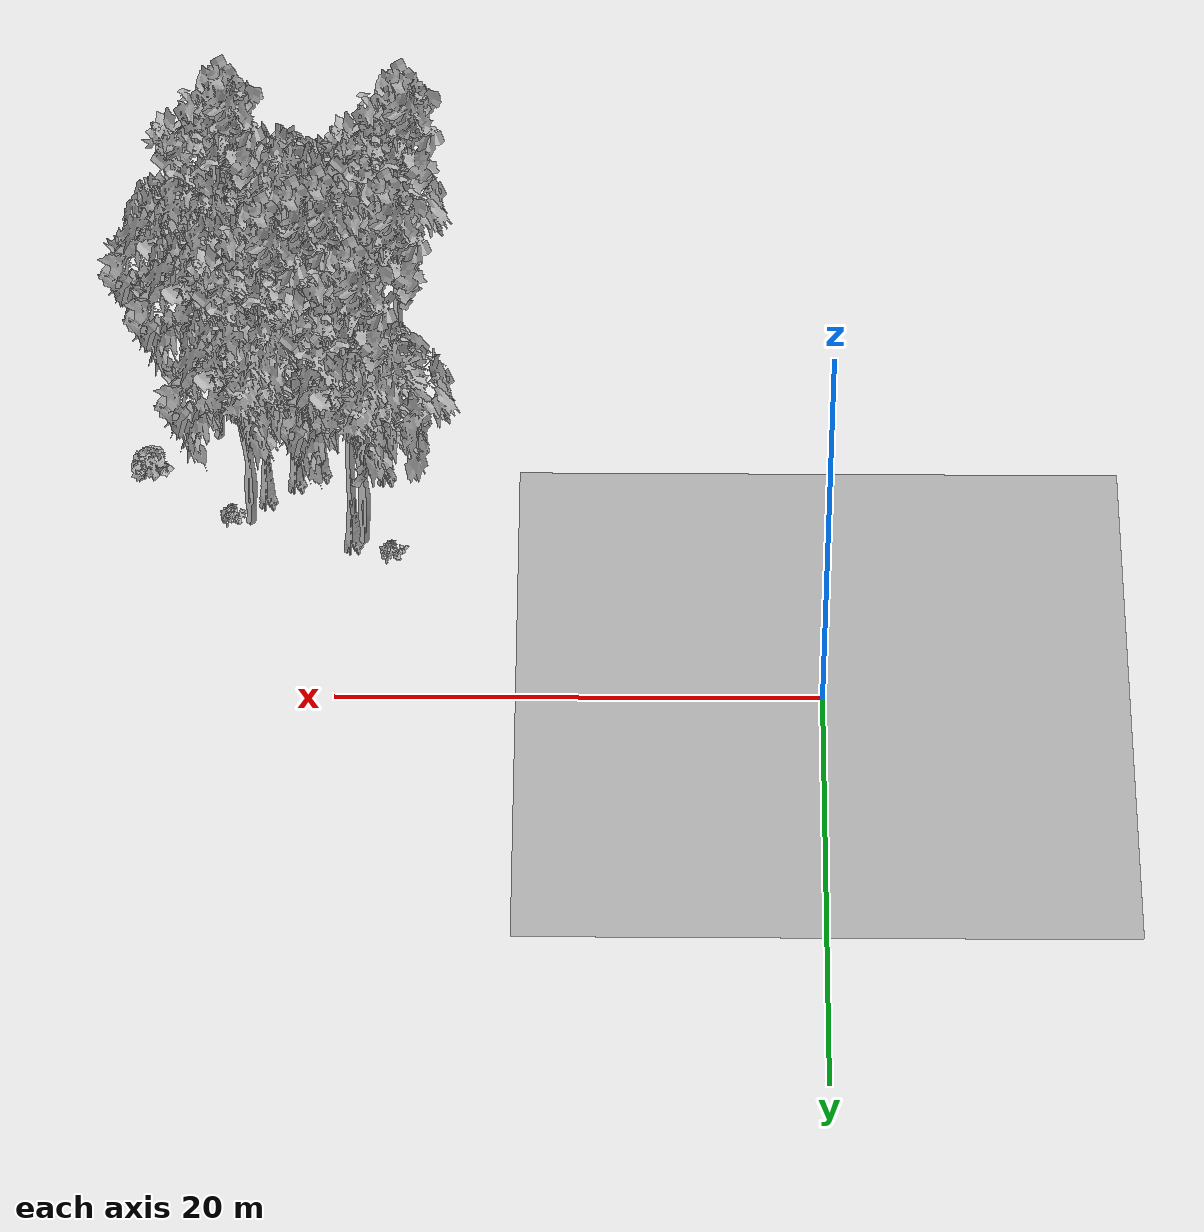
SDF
<sdf version="1.7">
 <world name="default">
  <model name="ground_plane">
   <static>1</static>
   <link name="link">
    <collision name="collision">
     <pose>-50 0 0 0 -0 0</pose>
     <geometry><plane><normal>0 0 1</normal><size>80 80</size></plane></geometry>
     <surface><contact><ode><min_depth>0.01</min_depth><max_vel>0</max_vel></ode></contact></surface>
    </collision>
    <visual name="grass">
     <cast_shadows>0</cast_shadows>
     <geometry>
      <mesh>
       <scale>0.46714285714285714 0.46714285714285714 0.1</scale>
       <uri>file://grass_plane/meshes/grass_plane.dae</uri>
      </mesh>
     </geometry>
    </visual>
   </link>
  </model>
  <model name="Tree 21">
   <static>1</static>
   <pose>19.55637076471522 -8.755730757932383 0 1.57079 -0 0</pose>
   <link name="link">
    <collision name="collision">
     <geometry><mesh><scale>3.5 5 3.5</scale><uri>model://tree_9/meshes/tree_9.obj</uri></mesh></geometry>
    </collision>
    <visual name="visual">
     <geometry><mesh><scale>3.5 5 3.5</scale><uri>model://tree_9/meshes/tree_9.obj</uri></mesh></geometry>
    </visual>
   </link>
  </model>
  <model name="Tree 63">
   <static>1</static>
   <pose>22.034921889106798 -12.19464837483941 0 1.57079 -0 0</pose>
   <link name="link">
    <collision name="collision">
     <geometry><mesh><scale>3.5 5 3.5</scale><uri>model://tree_9/meshes/tree_9.obj</uri></mesh></geometry>
    </collision>
    <visual name="visual">
     <geometry><mesh><scale>3.5 5 3.5</scale><uri>model://tree_9/meshes/tree_9.obj</uri></mesh></geometry>
    </visual>
   </link>
  </model>
  <model name="Tree 75">
   <static>1</static>
   <pose>23.75283128371443 -9.757232405916064 0 1.57079 -0 0</pose>
   <link name="link">
    <collision name="collision">
     <geometry><mesh><scale>3.5 5 3.5</scale><uri>model://tree_2/meshes/tree_2.obj</uri></mesh></geometry>
    </collision>
    <visual name="visual">
     <geometry><mesh><scale>3.5 5 3.5</scale><uri>model://tree_2/meshes/tree_2.obj</uri></mesh></geometry>
    </visual>
   </link>
  </model>
  <model name="Tree 132">
   <static>1</static>
   <pose>25.300776297335943 -19.22681442728088 0 1.57079 -0 0</pose>
   <link name="link">
    <collision name="collision">
     <geometry><mesh><scale>3.5 5 3.5</scale><uri>model://tree_9/meshes/tree_9.obj</uri></mesh></geometry>
    </collision>
    <visual name="visual">
     <geometry><mesh><scale>3.5 5 3.5</scale><uri>model://tree_9/meshes/tree_9.obj</uri></mesh></geometry>
    </visual>
   </link>
  </model>
  <model name="Tree 209">
   <static>1</static>
   <pose>19.543037786777653 -19.65341753990873 0 1.57079 -0 0</pose>
   <link name="link">
    <collision name="collision">
     <geometry><mesh><scale>3.5 5 3.5</scale><uri>model://tree_2/meshes/tree_2.obj</uri></mesh></geometry>
    </collision>
    <visual name="visual">
     <geometry><mesh><scale>3.5 5 3.5</scale><uri>model://tree_2/meshes/tree_2.obj</uri></mesh></geometry>
    </visual>
   </link>
  </model>
  <model name="Tree 220">
   <static>1</static>
   <pose>23.22256454277135 -11.236046316195775 0 1.57079 -0 0</pose>
   <link name="link">
    <collision name="collision">
     <geometry><mesh><scale>3.5 5 3.5</scale><uri>model://tree_9/meshes/tree_9.obj</uri></mesh></geometry>
    </collision>
    <visual name="visual">
     <geometry><mesh><scale>3.5 5 3.5</scale><uri>model://tree_9/meshes/tree_9.obj</uri></mesh></geometry>
    </visual>
   </link>
  </model>
  <model name="Tree 232">
   <static>1</static>
   <pose>26.50325574579297 -17.33328300746855 0 1.57079 -0 0</pose>
   <link name="link">
    <collision name="collision">
     <geometry><mesh><scale>3.5 5 3.5</scale><uri>model://tree_2/meshes/tree_2.obj</uri></mesh></geometry>
    </collision>
    <visual name="visual">
     <geometry><mesh><scale>3.5 5 3.5</scale><uri>model://tree_2/meshes/tree_2.obj</uri></mesh></geometry>
    </visual>
   </link>
  </model>
  <model name="Tree 260">
   <static>1</static>
   <pose>17.884509547198796 -19.051057427737945 0 1.57079 -0 0</pose>
   <link name="link">
    <collision name="collision">
     <geometry><mesh><scale>3.5 5 3.5</scale><uri>model://tree_9/meshes/tree_9.obj</uri></mesh></geometry>
    </collision>
    <visual name="visual">
     <geometry><mesh><scale>3.5 5 3.5</scale><uri>model://tree_9/meshes/tree_9.obj</uri></mesh></geometry>
    </visual>
   </link>
  </model>
  <model name="Tree 329">
   <static>1</static>
   <pose>21.011503853876583 -12.784759894155755 0 1.57079 -0 0</pose>
   <link name="link">
    <collision name="collision">
     <geometry><mesh><scale>3.5 5 3.5</scale><uri>model://tree_9/meshes/tree_9.obj</uri></mesh></geometry>
    </collision>
    <visual name="visual">
     <geometry><mesh><scale>3.5 5 3.5</scale><uri>model://tree_9/meshes/tree_9.obj</uri></mesh></geometry>
    </visual>
   </link>
  </model>
  <model name="Tree 361">
   <static>1</static>
   <pose>18.96966673957877 -8.698394521746167 0 1.57079 -0 0</pose>
   <link name="link">
    <collision name="collision">
     <geometry><mesh><scale>3.5 5 3.5</scale><uri>model://tree_2/meshes/tree_2.obj</uri></mesh></geometry>
    </collision>
    <visual name="visual">
     <geometry><mesh><scale>3.5 5 3.5</scale><uri>model://tree_2/meshes/tree_2.obj</uri></mesh></geometry>
    </visual>
   </link>
  </model>
  <model name="Tree 462">
   <static>1</static>
   <pose>23.67823998934859 -20.158223382603097 0 1.57079 -0 0</pose>
   <link name="link">
    <collision name="collision">
     <geometry><mesh><scale>3.5 5 3.5</scale><uri>model://tree_2/meshes/tree_2.obj</uri></mesh></geometry>
    </collision>
    <visual name="visual">
     <geometry><mesh><scale>3.5 5 3.5</scale><uri>model://tree_2/meshes/tree_2.obj</uri></mesh></geometry>
    </visual>
   </link>
  </model>
  <model name="Tree 549">
   <static>1</static>
   <pose>25.325007734996888 -14.695273766125545 0 1.57079 -0 0</pose>
   <link name="link">
    <collision name="collision">
     <geometry><mesh><scale>3.5 5 3.5</scale><uri>model://tree_2/meshes/tree_2.obj</uri></mesh></geometry>
    </collision>
    <visual name="visual">
     <geometry><mesh><scale>3.5 5 3.5</scale><uri>model://tree_2/meshes/tree_2.obj</uri></mesh></geometry>
    </visual>
   </link>
  </model>
  <model name="Tree 589">
   <static>1</static>
   <pose>18.27057817167573 -12.627759224982817 0 1.57079 -0 0</pose>
   <link name="link">
    <collision name="collision">
     <geometry><mesh><scale>3.5 5 3.5</scale><uri>model://tree_9/meshes/tree_9.obj</uri></mesh></geometry>
    </collision>
    <visual name="visual">
     <geometry><mesh><scale>3.5 5 3.5</scale><uri>model://tree_9/meshes/tree_9.obj</uri></mesh></geometry>
    </visual>
   </link>
  </model>
  <model name="Bush 108">
   <static>1</static>
   <pose>18.704179451638694 -13.066961081776498 0 1.57079 -0 0</pose>
   <link name="link">
    <collision name="collision">
     <geometry><mesh><scale>2 2 2</scale><uri>model://bush_2/meshes/bush_2.obj</uri></mesh></geometry>
     <surface><contact><collide_without_contact>false</collide_without_contact></contact></surface>
    </collision>
    <visual name="visual">
     <geometry><mesh><scale>2 2 2</scale><uri>model://bush_2/meshes/bush_2.obj</uri></mesh></geometry>
    </visual>
   </link>
  </model>
  <model name="Bush 126">
   <static>1</static>
   <pose>18.78551050615269 -14.827255835971023 0 1.57079 -0 0</pose>
   <link name="link">
    <collision name="collision">
     <geometry><mesh><scale>2 2 2</scale><uri>model://bush_2/meshes/bush_2.obj</uri></mesh></geometry>
     <surface><contact><collide_without_contact>false</collide_without_contact></contact></surface>
    </collision>
    <visual name="visual">
     <geometry><mesh><scale>2 2 2</scale><uri>model://bush_2/meshes/bush_2.obj</uri></mesh></geometry>
    </visual>
   </link>
  </model>
  <model name="Bush 239">
   <static>1</static>
   <pose>28.171403071576037 -12.271067979523302 0 1.57079 -0 0</pose>
   <link name="link">
    <collision name="collision">
     <geometry><mesh><scale>2 2 2</scale><uri>model://bush_1/meshes/bush_1.obj</uri></mesh></geometry>
     <surface><contact><collide_without_contact>false</collide_without_contact></contact></surface>
    </collision>
    <visual name="visual">
     <geometry><mesh><scale>2 2 2</scale><uri>model://bush_1/meshes/bush_1.obj</uri></mesh></geometry>
    </visual>
   </link>
  </model>
  <model name="Bush 309">
   <static>1</static>
   <pose>26.65822738674605 -14.639410985466029 0 1.57079 -0 0</pose>
   <link name="link">
    <collision name="collision">
     <geometry><mesh><scale>2 2 2</scale><uri>model://bush_5/meshes/bush_5.obj</uri></mesh></geometry>
     <surface><contact><collide_without_contact>false</collide_without_contact></contact></surface>
    </collision>
    <visual name="visual">
     <geometry><mesh><scale>2 2 2</scale><uri>model://bush_5/meshes/bush_5.obj</uri></mesh></geometry>
    </visual>
   </link>
  </model>
  <model name="Bush 315">
   <static>1</static>
   <pose>20.24029747235685 -19.931602605424175 0 1.57079 -0 0</pose>
   <link name="link">
    <collision name="collision">
     <geometry><mesh><scale>2 2 2</scale><uri>model://bush_2/meshes/bush_2.obj</uri></mesh></geometry>
     <surface><contact><collide_without_contact>false</collide_without_contact></contact></surface>
    </collision>
    <visual name="visual">
     <geometry><mesh><scale>2 2 2</scale><uri>model://bush_2/meshes/bush_2.obj</uri></mesh></geometry>
    </visual>
   </link>
  </model>
  <model name="Bush 360">
   <static>1</static>
   <pose>18.431582913460844 -20.437500624250227 0 1.57079 -0 0</pose>
   <link name="link">
    <collision name="collision">
     <geometry><mesh><scale>2 2 2</scale><uri>model://bush_1/meshes/bush_1.obj</uri></mesh></geometry>
     <surface><contact><collide_without_contact>false</collide_without_contact></contact></surface>
    </collision>
    <visual name="visual">
     <geometry><mesh><scale>2 2 2</scale><uri>model://bush_1/meshes/bush_1.obj</uri></mesh></geometry>
    </visual>
   </link>
  </model>
  <model name="Bush 377">
   <static>1</static>
   <pose>24.60777717869329 -10.087383167175872 0 1.57079 -0 0</pose>
   <link name="link">
    <collision name="collision">
     <geometry><mesh><scale>2 2 2</scale><uri>model://bush_2/meshes/bush_2.obj</uri></mesh></geometry>
     <surface><contact><collide_without_contact>false</collide_without_contact></contact></surface>
    </collision>
    <visual name="visual">
     <geometry><mesh><scale>2 2 2</scale><uri>model://bush_2/meshes/bush_2.obj</uri></mesh></geometry>
    </visual>
   </link>
  </model>
  <model name="Bush 515">
   <static>1</static>
   <pose>17.70841693804423 -17.927035920676992 0 1.57079 -0 0</pose>
   <link name="link">
    <collision name="collision">
     <geometry><mesh><scale>2 2 2</scale><uri>model://bush_4/meshes/bush_4.obj</uri></mesh></geometry>
     <surface><contact><collide_without_contact>false</collide_without_contact></contact></surface>
    </collision>
    <visual name="visual">
     <geometry><mesh><scale>2 2 2</scale><uri>model://bush_4/meshes/bush_4.obj</uri></mesh></geometry>
    </visual>
   </link>
  </model>
  <model name="Bush 610">
   <static>1</static>
   <pose>17.844885070251365 -8.080008707387414 0 1.57079 -0 0</pose>
   <link name="link">
    <collision name="collision">
     <geometry><mesh><scale>2 2 2</scale><uri>model://bush_2/meshes/bush_2.obj</uri></mesh></geometry>
     <surface><contact><collide_without_contact>false</collide_without_contact></contact></surface>
    </collision>
    <visual name="visual">
     <geometry><mesh><scale>2 2 2</scale><uri>model://bush_2/meshes/bush_2.obj</uri></mesh></geometry>
    </visual>
   </link>
  </model>
  <model name="Bush 629">
   <static>1</static>
   <pose>26.993559351769477 -17.428112976176156 0 1.57079 -0 0</pose>
   <link name="link">
    <collision name="collision">
     <geometry><mesh><scale>2 2 2</scale><uri>model://bush_2/meshes/bush_2.obj</uri></mesh></geometry>
     <surface><contact><collide_without_contact>false</collide_without_contact></contact></surface>
    </collision>
    <visual name="visual">
     <geometry><mesh><scale>2 2 2</scale><uri>model://bush_2/meshes/bush_2.obj</uri></mesh></geometry>
    </visual>
   </link>
  </model>
 </world>
</sdf>
